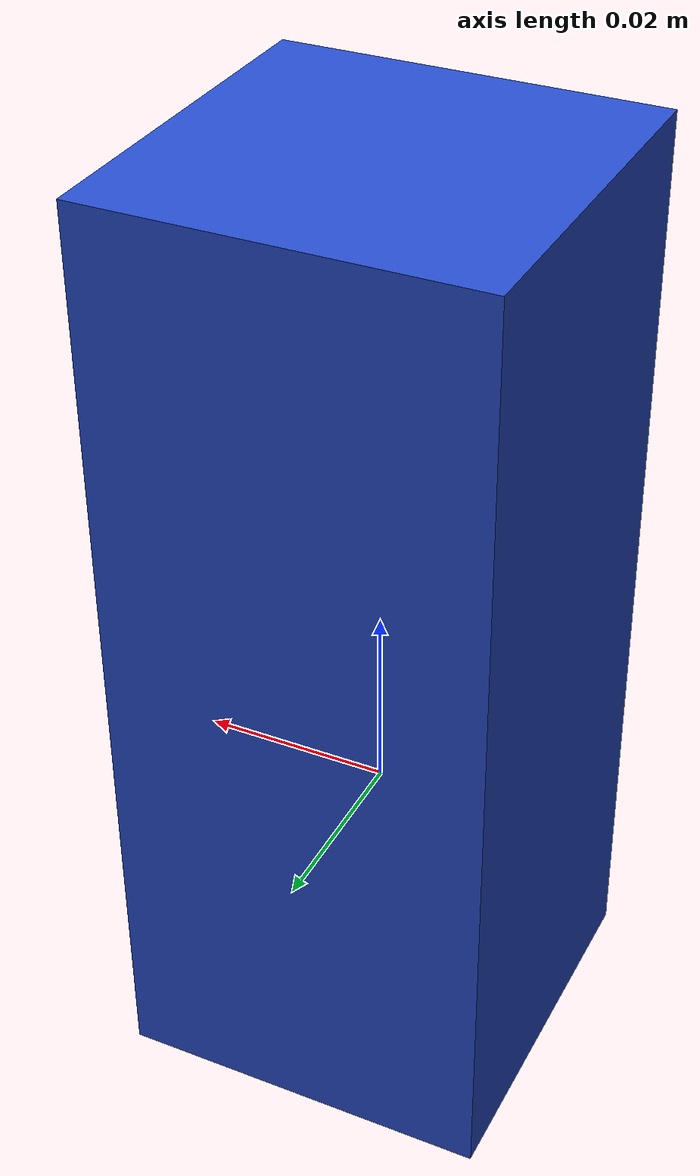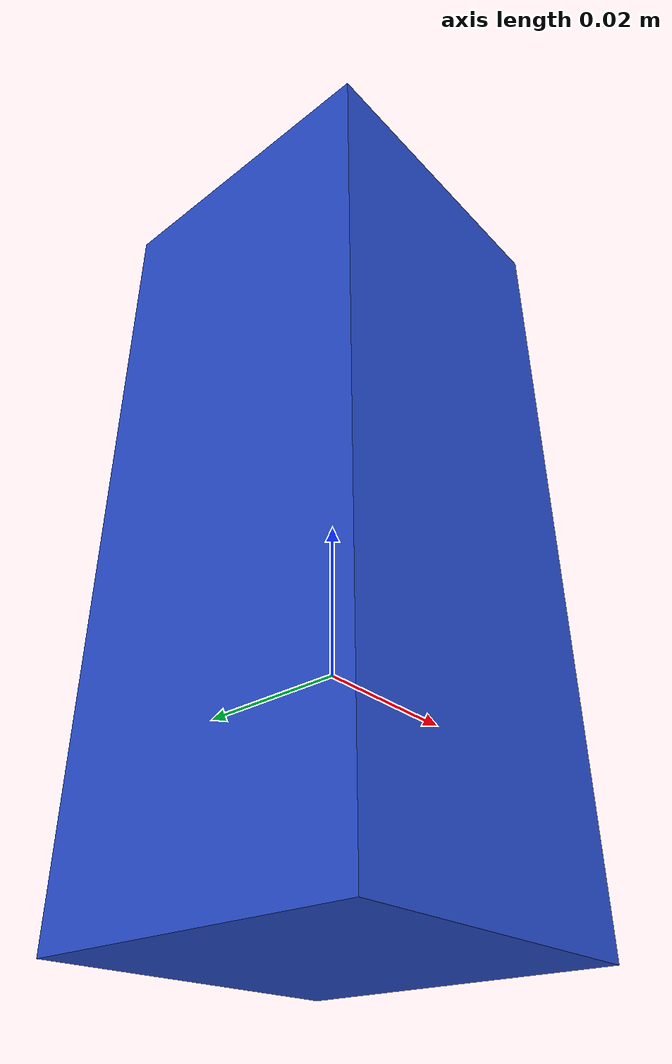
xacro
<robot name="simple_box">
      <link name="my_box">
        <inertial>
          <origin xyz="0 0 0" />
          <mass value="0.001" />
          <inertia  ixx="0.000001" ixy="0.0"  ixz="0.0"  iyy="0.000001"  iyz="0.0"  izz="0.000001" />
        </inertial>
        <visual>
          <origin xyz="0 0 0.02"/>
         <geometry>
           <box size="0.04 0.04 0.1" />
         </geometry>
       </visual>
       <collision>
         <origin xyz="0 0 0.02"/>
         <geometry>
           <box size="0.04 0.04 0.04" />
         </geometry>
       </collision>
     </link>
     <gazebo reference="my_box">
       <material>Gazebo/Blue</material>
     </gazebo>
</robot>
